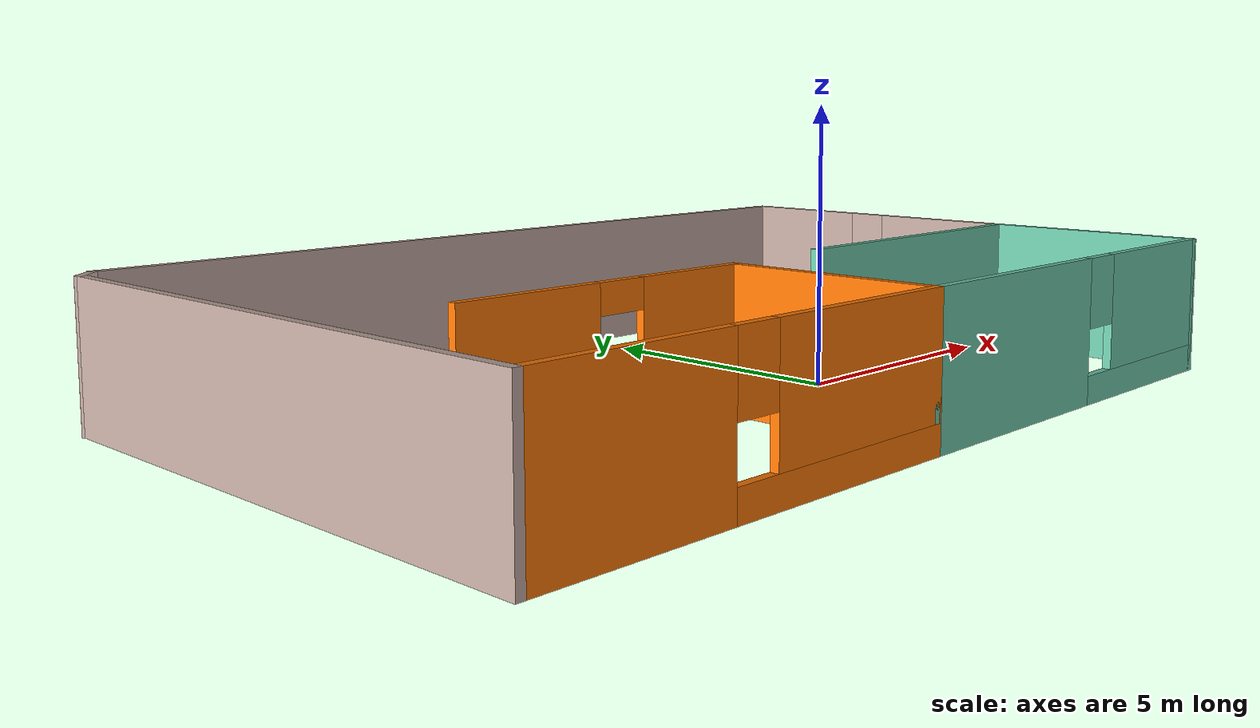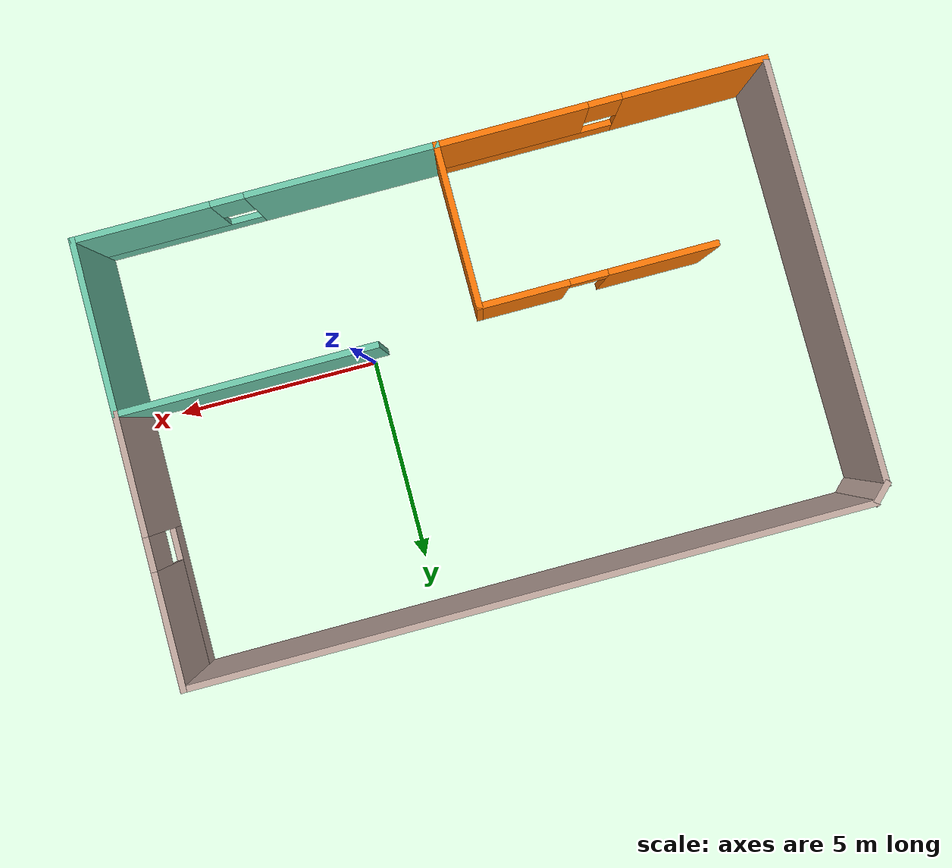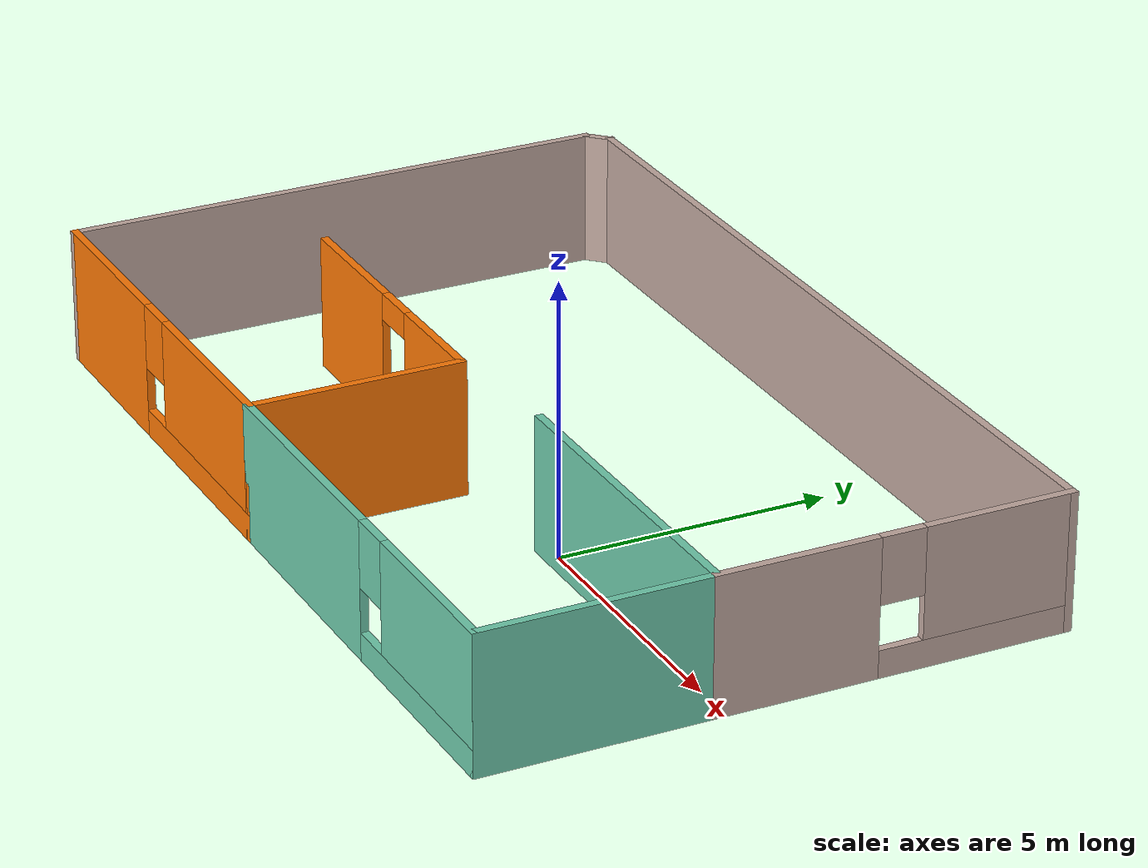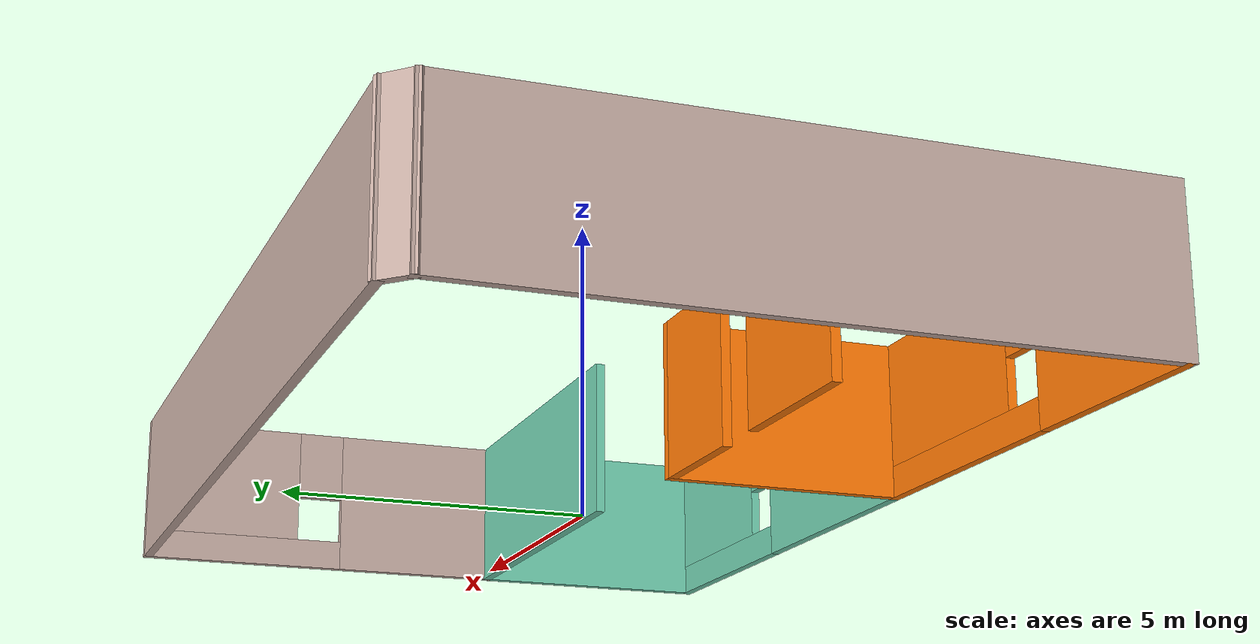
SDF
<?xml version='1.0'?>
<sdf version='1.6'>
  <model name='house'>
    <pose frame=''>-2.46048 0.968625 0 0 -0 0</pose>
    <link name='Wall_0'>
      <collision name='Wall_0_Collision'>
        <geometry>
          <box>
            <size>10.25 0.15 2.5</size>
          </box>
        </geometry>
        <pose frame=''>0 0 1.25 0 -0 0</pose>
      </collision>
      <visual name='Wall_0_Visual'>
        <pose frame=''>0 0 1.25 0 -0 0</pose>
        <geometry>
          <box>
            <size>10.25 0.15 2.5</size>
          </box>
        </geometry>
        <material>
          <script>
            <uri>file://media/materials/scripts/gazebo.material</uri>
            <name>Gazebo/Grey</name>
          </script>
          <ambient>0.760784 0.662745 0.627451 1</ambient>
        </material>
        <meta>
          <layer>0</layer>
        </meta>
      </visual>
      <pose frame=''>-8.20947 -0.190533 0 0 0 -1.5708</pose>
    </link>
    <link name='Wall_10'>
      <pose frame=''>8.24053 2.03447 0 0 -0 1.5708</pose>
      <visual name='Wall_10_Visual_0'>
        <pose frame=''>-1.78129 0 1.25 0 -0 0</pose>
        <geometry>
          <box>
            <size>2.93743 0.15 2.5</size>
          </box>
        </geometry>
        <material>
          <script>
            <uri>file://media/materials/scripts/gazebo.material</uri>
            <name>Gazebo/Grey</name>
          </script>
          <ambient>0.760784 0.662745 0.627451 1</ambient>
        </material>
        <meta>
          <layer>0</layer>
        </meta>
      </visual>
      <collision name='Wall_10_Collision_0'>
        <geometry>
          <box>
            <size>2.93743 0.15 2.5</size>
          </box>
        </geometry>
        <pose frame=''>-1.78129 0 1.25 0 -0 0</pose>
      </collision>
      <visual name='Wall_10_Visual_1'>
        <pose frame=''>1.46871 0 0.25 0 -0 0</pose>
        <geometry>
          <box>
            <size>3.56257 0.15 0.5</size>
          </box>
        </geometry>
        <material>
          <script>
            <uri>file://media/materials/scripts/gazebo.material</uri>
            <name>Gazebo/Grey</name>
          </script>
          <ambient>0.760784 0.662745 0.627451 1</ambient>
        </material>
        <meta>
          <layer>0</layer>
        </meta>
      </visual>
      <collision name='Wall_10_Collision_1'>
        <geometry>
          <box>
            <size>3.56257 0.15 0.5</size>
          </box>
        </geometry>
        <pose frame=''>1.46871 0 0.25 0 -0 0</pose>
      </collision>
      <visual name='Wall_10_Visual_2'>
        <pose frame=''>1.86871 0 1.5 0 -0 0</pose>
        <geometry>
          <box>
            <size>2.76258 0.15 2</size>
          </box>
        </geometry>
        <material>
          <script>
            <uri>file://media/materials/scripts/gazebo.material</uri>
            <name>Gazebo/Grey</name>
          </script>
          <ambient>0.760784 0.662745 0.627451 1</ambient>
        </material>
        <meta>
          <layer>0</layer>
        </meta>
      </visual>
      <collision name='Wall_10_Collision_2'>
        <geometry>
          <box>
            <size>2.76258 0.15 2</size>
          </box>
        </geometry>
        <pose frame=''>1.86871 0 1.5 0 -0 0</pose>
      </collision>
      <visual name='Wall_10_Visual_3'>
        <pose frame=''>0.087425 0 1.9 0 -0 0</pose>
        <geometry>
          <box>
            <size>0.8 0.15 1.2</size>
          </box>
        </geometry>
        <material>
          <script>
            <uri>file://media/materials/scripts/gazebo.material</uri>
            <name>Gazebo/Grey</name>
          </script>
          <ambient>0.760784 0.662745 0.627451 1</ambient>
        </material>
        <meta>
          <layer>0</layer>
        </meta>
      </visual>
      <collision name='Wall_10_Collision_3'>
        <geometry>
          <box>
            <size>0.8 0.15 1.2</size>
          </box>
        </geometry>
        <pose frame=''>0.087425 0 1.9 0 -0 0</pose>
      </collision>
    </link>
    <link name='Wall_11'>
      <collision name='Wall_11_Collision'>
        <geometry>
          <box>
            <size>16.25 0.15 2.5</size>
          </box>
        </geometry>
        <pose frame=''>0 0 1.25 0 -0 0</pose>
      </collision>
      <visual name='Wall_11_Visual'>
        <pose frame=''>0 0 1.25 0 -0 0</pose>
        <geometry>
          <box>
            <size>16.25 0.15 2.5</size>
          </box>
        </geometry>
        <material>
          <script>
            <uri>file://media/materials/scripts/gazebo.material</uri>
            <name>Gazebo/Grey</name>
          </script>
          <ambient>0.760784 0.662745 0.627451 1</ambient>
        </material>
        <meta>
          <layer>0</layer>
        </meta>
      </visual>
      <pose frame=''>0.190533 5.20947 0 0 -0 3.14159</pose>
    </link>
    <link name='Wall_12'>
      <collision name='Wall_12_Collision'>
        <geometry>
          <box>
            <size>0.644975 0.15 2.5</size>
          </box>
        </geometry>
        <pose frame=''>0 0 1.25 0 -0 0</pose>
      </collision>
      <visual name='Wall_12_Visual'>
        <pose frame=''>0 0 1.25 0 -0 0</pose>
        <geometry>
          <box>
            <size>0.644975 0.15 2.5</size>
          </box>
        </geometry>
        <material>
          <script>
            <uri>file://media/materials/scripts/gazebo.material</uri>
            <name>Gazebo/Grey</name>
          </script>
          <ambient>0.760784 0.662745 0.627451 1</ambient>
        </material>
        <meta>
          <layer>0</layer>
        </meta>
      </visual>
      <pose frame=''>-8.03447 5.03447 0 0 0 -2.35619</pose>
    </link>
    <link name='Wall_2'>
      <pose frame=''>-4.28447 -5.24053 0 0 -0 0</pose>
      <visual name='Wall_2_Visual_0'>
        <pose frame=''>-2.2462 0 1.25 0 -0 0</pose>
        <geometry>
          <box>
            <size>3.5076 0.15 2.5</size>
          </box>
        </geometry>
        <material>
          <script>
            <uri>file://media/materials/scripts/gazebo.material</uri>
            <name>Gazebo/Grey</name>
          </script>
          <ambient>0.996078 0.47451 0.0196078 1</ambient>
        </material>
        <meta>
          <layer>0</layer>
        </meta>
      </visual>
      <collision name='Wall_2_Collision_0'>
        <geometry>
          <box>
            <size>3.5076 0.15 2.5</size>
          </box>
        </geometry>
        <pose frame=''>-2.2462 0 1.25 0 -0 0</pose>
      </collision>
      <visual name='Wall_2_Visual_1'>
        <pose frame=''>1.7538 0 0.25 0 -0 0</pose>
        <geometry>
          <box>
            <size>4.4924 0.15 0.5</size>
          </box>
        </geometry>
        <material>
          <script>
            <uri>file://media/materials/scripts/gazebo.material</uri>
            <name>Gazebo/Grey</name>
          </script>
          <ambient>0.996078 0.47451 0.0196078 1</ambient>
        </material>
        <meta>
          <layer>0</layer>
        </meta>
      </visual>
      <collision name='Wall_2_Collision_1'>
        <geometry>
          <box>
            <size>4.4924 0.15 0.5</size>
          </box>
        </geometry>
        <pose frame=''>1.7538 0 0.25 0 -0 0</pose>
      </collision>
      <visual name='Wall_2_Visual_2'>
        <pose frame=''>2.1538 0 1.5 0 -0 0</pose>
        <geometry>
          <box>
            <size>3.69239 0.15 2</size>
          </box>
        </geometry>
        <material>
          <script>
            <uri>file://media/materials/scripts/gazebo.material</uri>
            <name>Gazebo/Grey</name>
          </script>
          <ambient>0.996078 0.47451 0.0196078 1</ambient>
        </material>
        <meta>
          <layer>0</layer>
        </meta>
      </visual>
      <collision name='Wall_2_Collision_2'>
        <geometry>
          <box>
            <size>3.69239 0.15 2</size>
          </box>
        </geometry>
        <pose frame=''>2.1538 0 1.5 0 -0 0</pose>
      </collision>
      <visual name='Wall_2_Visual_3'>
        <pose frame=''>-0.092395 0 1.9 0 -0 0</pose>
        <geometry>
          <box>
            <size>0.8 0.15 1.2</size>
          </box>
        </geometry>
        <material>
          <script>
            <uri>file://media/materials/scripts/gazebo.material</uri>
            <name>Gazebo/Grey</name>
          </script>
          <ambient>0.996078 0.47451 0.0196078 1</ambient>
        </material>
        <meta>
          <layer>0</layer>
        </meta>
      </visual>
      <collision name='Wall_2_Collision_3'>
        <geometry>
          <box>
            <size>0.8 0.15 1.2</size>
          </box>
        </geometry>
        <pose frame=''>-0.092395 0 1.9 0 -0 0</pose>
      </collision>
    </link>
    <link name='Wall_3'>
      <collision name='Wall_3_Collision'>
        <geometry>
          <box>
            <size>4 0.15 2.5</size>
          </box>
        </geometry>
        <pose frame=''>0 0 1.25 0 -0 0</pose>
      </collision>
      <visual name='Wall_3_Visual'>
        <pose frame=''>0 0 1.25 0 -0 0</pose>
        <geometry>
          <box>
            <size>4 0.15 2.5</size>
          </box>
        </geometry>
        <material>
          <script>
            <uri>file://media/materials/scripts/gazebo.material</uri>
            <name>Gazebo/Grey</name>
          </script>
          <ambient>0.996078 0.47451 0.0196078 1</ambient>
        </material>
        <meta>
          <layer>0</layer>
        </meta>
      </visual>
      <pose frame=''>-0.359467 -3.31553 0 0 -0 1.5708</pose>
    </link>
    <link name='Wall_4'>
      <pose frame=''>-3.15947 -1.39053 0 0 -0 3.14159</pose>
      <visual name='Wall_4_Visual_0'>
        <pose frame=''>-1.76861 0 1.25 0 -0 0</pose>
        <geometry>
          <box>
            <size>2.21277 0.15 2.5</size>
          </box>
        </geometry>
        <material>
          <script>
            <uri>file://media/materials/scripts/gazebo.material</uri>
            <name>Gazebo/Grey</name>
          </script>
          <ambient>0.996078 0.47451 0.0196078 1</ambient>
        </material>
        <meta>
          <layer>0</layer>
        </meta>
      </visual>
      <collision name='Wall_4_Collision_0'>
        <geometry>
          <box>
            <size>2.21277 0.15 2.5</size>
          </box>
        </geometry>
        <pose frame=''>-1.76861 0 1.25 0 -0 0</pose>
      </collision>
      <visual name='Wall_4_Visual_1'>
        <pose frame=''>1.55639 0 1.25 0 -0 0</pose>
        <geometry>
          <box>
            <size>2.63723 0.15 2.5</size>
          </box>
        </geometry>
        <material>
          <script>
            <uri>file://media/materials/scripts/gazebo.material</uri>
            <name>Gazebo/Grey</name>
          </script>
          <ambient>0.996078 0.47451 0.0196078 1</ambient>
        </material>
        <meta>
          <layer>0</layer>
        </meta>
      </visual>
      <collision name='Wall_4_Collision_1'>
        <geometry>
          <box>
            <size>2.63723 0.15 2.5</size>
          </box>
        </geometry>
        <pose frame=''>1.55639 0 1.25 0 -0 0</pose>
      </collision>
      <visual name='Wall_4_Visual_2'>
        <pose frame=''>-0.212228 0 2.25 0 -0 0</pose>
        <geometry>
          <box>
            <size>0.9 0.15 0.5</size>
          </box>
        </geometry>
        <material>
          <script>
            <uri>file://media/materials/scripts/gazebo.material</uri>
            <name>Gazebo/Grey</name>
          </script>
          <ambient>0.996078 0.47451 0.0196078 1</ambient>
        </material>
        <meta>
          <layer>0</layer>
        </meta>
      </visual>
      <collision name='Wall_4_Collision_2'>
        <geometry>
          <box>
            <size>0.9 0.15 0.5</size>
          </box>
        </geometry>
        <pose frame=''>-0.212228 0 2.25 0 -0 0</pose>
      </collision>
    </link>
    <link name='Wall_6'>
      <pose frame=''>3.94053 -5.24053 0 0 -0 0</pose>
      <visual name='Wall_6_Visual_0'>
        <pose frame=''>-2.05962 0 1.25 0 -0 0</pose>
        <geometry>
          <box>
            <size>4.63077 0.15 2.5</size>
          </box>
        </geometry>
        <material>
          <script>
            <uri>file://media/materials/scripts/gazebo.material</uri>
            <name>Gazebo/Grey</name>
          </script>
          <ambient>0.435294 0.796078 0.67451 1</ambient>
        </material>
        <meta>
          <layer>0</layer>
        </meta>
      </visual>
      <collision name='Wall_6_Collision_0'>
        <geometry>
          <box>
            <size>4.63077 0.15 2.5</size>
          </box>
        </geometry>
        <pose frame=''>-2.05962 0 1.25 0 -0 0</pose>
      </collision>
      <visual name='Wall_6_Visual_1'>
        <pose frame=''>2.31538 0 0.25 0 -0 0</pose>
        <geometry>
          <box>
            <size>4.11923 0.15 0.5</size>
          </box>
        </geometry>
        <material>
          <script>
            <uri>file://media/materials/scripts/gazebo.material</uri>
            <name>Gazebo/Grey</name>
          </script>
          <ambient>0.435294 0.796078 0.67451 1</ambient>
        </material>
        <meta>
          <layer>0</layer>
        </meta>
      </visual>
      <collision name='Wall_6_Collision_1'>
        <geometry>
          <box>
            <size>4.11923 0.15 0.5</size>
          </box>
        </geometry>
        <pose frame=''>2.31538 0 0.25 0 -0 0</pose>
      </collision>
      <visual name='Wall_6_Visual_2'>
        <pose frame=''>2.71538 0 1.5 0 -0 0</pose>
        <geometry>
          <box>
            <size>3.31923 0.15 2</size>
          </box>
        </geometry>
        <material>
          <script>
            <uri>file://media/materials/scripts/gazebo.material</uri>
            <name>Gazebo/Grey</name>
          </script>
          <ambient>0.435294 0.796078 0.67451 1</ambient>
        </material>
        <meta>
          <layer>0</layer>
        </meta>
      </visual>
      <collision name='Wall_6_Collision_2'>
        <geometry>
          <box>
            <size>3.31923 0.15 2</size>
          </box>
        </geometry>
        <pose frame=''>2.71538 0 1.5 0 -0 0</pose>
      </collision>
      <visual name='Wall_6_Visual_3'>
        <pose frame=''>0.655767 0 1.9 0 -0 0</pose>
        <geometry>
          <box>
            <size>0.8 0.15 1.2</size>
          </box>
        </geometry>
        <material>
          <script>
            <uri>file://media/materials/scripts/gazebo.material</uri>
            <name>Gazebo/Grey</name>
          </script>
          <ambient>0.435294 0.796078 0.67451 1</ambient>
        </material>
        <meta>
          <layer>0</layer>
        </meta>
      </visual>
      <collision name='Wall_6_Collision_3'>
        <geometry>
          <box>
            <size>0.8 0.15 1.2</size>
          </box>
        </geometry>
        <pose frame=''>0.655767 0 1.9 0 -0 0</pose>
      </collision>
    </link>
    <link name='Wall_7'>
      <collision name='Wall_7_Collision'>
        <geometry>
          <box>
            <size>4.25 0.15 2.5</size>
          </box>
        </geometry>
        <pose frame=''>0 0 1.25 0 -0 0</pose>
      </collision>
      <visual name='Wall_7_Visual'>
        <pose frame=''>0 0 1.25 0 -0 0</pose>
        <geometry>
          <box>
            <size>4.25 0.15 2.5</size>
          </box>
        </geometry>
        <material>
          <script>
            <uri>file://media/materials/scripts/gazebo.material</uri>
            <name>Gazebo/Grey</name>
          </script>
          <ambient>0.435294 0.796078 0.67451 1</ambient>
        </material>
        <meta>
          <layer>0</layer>
        </meta>
      </visual>
      <pose frame=''>8.24053 -3.19053 0 0 -0 1.5708</pose>
    </link>
    <link name='Wall_8'>
      <collision name='Wall_8_Collision'>
        <geometry>
          <box>
            <size>6.25 0.15 2.5</size>
          </box>
        </geometry>
        <pose frame=''>0 0 1.25 0 -0 0</pose>
      </collision>
      <visual name='Wall_8_Visual'>
        <pose frame=''>0 0 1.25 0 -0 0</pose>
        <geometry>
          <box>
            <size>6.25 0.15 2.5</size>
          </box>
        </geometry>
        <material>
          <script>
            <uri>file://media/materials/scripts/gazebo.material</uri>
            <name>Gazebo/Grey</name>
          </script>
          <ambient>0.435294 0.796078 0.67451 1</ambient>
        </material>
        <meta>
          <layer>0</layer>
        </meta>
      </visual>
      <pose frame=''>5.19053 -1.14053 0 0 -0 3.14159</pose>
    </link>
    <static>1</static>
  </model>
</sdf>
